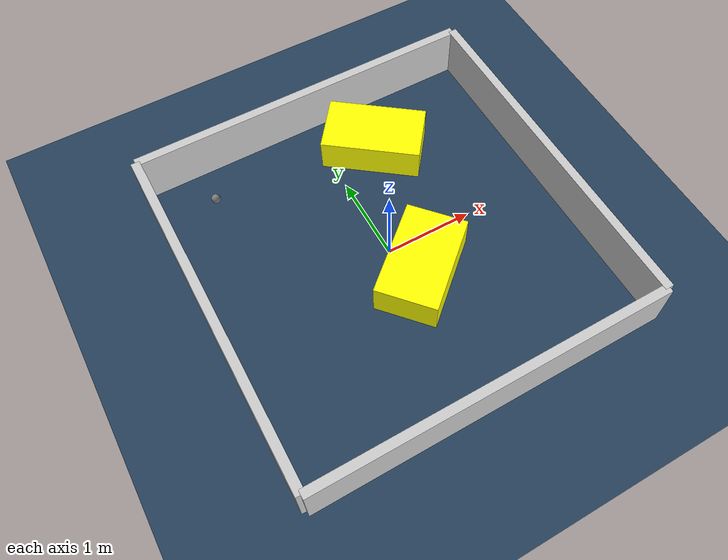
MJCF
<?xml version="1.0" ?>
<mujoco model="generated_environment">
  <option timestep="0.01" integrator="RK4" cone="elliptic"/>
  <default>
    <geom density="1"/>
  </default>
  <asset>
    <texture builtin="gradient" height="3072" rgb1="0.3 0.5 0.7" rgb2="0 0 0" type="skybox" width="512"/>
    <texture builtin="checker" height="300" mark="edge" markrgb="0.8 0.8 0.8" name="groundplane" rgb1="0.2 0.3 0.4" rgb2="0.1 0.2 0.3" type="2d" width="300"/>
    <material name="groundplane" reflectance="0.2" texrepeat="5 5" texture="groundplane" texuniform="true"/>
    <material name="robot" rgba="0.0 1.0 0.0 1"/>
  </asset>
  <worldbody>
    <light dir="0 0 -1" directional="true" pos="0 0 1.5"/>
    <geom condim="4" friction="1.0 0.005 0.001" material="groundplane" name="floor" size="0 0 0.05" type="plane"/>
    <body name="walls">
      <geom name="wall_1" condim="4" pos="-2.0 0.0 0.3" rgba="0.800000011920929 0.800000011920929 0.800000011920929 1.0" size="0.05 2.0 0.3" type="box"/>
      <geom name="wall_2" condim="4" pos="2.0 0.0 0.3" rgba="0.800000011920929 0.800000011920929 0.800000011920929 1.0" size="0.05 2.0 0.3" type="box"/>
      <geom name="wall_3" condim="4" pos="0.0 -2.0 0.3" rgba="0.800000011920929 0.800000011920929 0.800000011920929 1.0" size="2.0 0.05 0.3" type="box"/>
      <geom name="wall_4" condim="4" pos="0.0 2.0 0.3" rgba="0.800000011920929 0.800000011920929 0.800000011920929 1.0" size="2.0 0.05 0.3" type="box"/>
    </body>
    <body name="robot">
      <joint name="joint_x" type="slide" pos="0 0 0" axis="1 0 0"/>
      <joint name="joint_y" type="slide" pos="0 0 0" axis="0 1 0"/>
      <geom name="robot" type="sphere" pos="-1.382112549306863 1.432392535112283 0.2" size="0.05" mass="5." friction="1.0 0.005 0.0001" condim="4"/>
      <site name="sensor_ball"/>
    </body>
    <body name="obstacle_1_movable">
      <geom name="obstacle_1_movable" condim="4" pos="0.1547471898618289 -0.4010861834576924 0.2" euler="0 0 131.54673709946405" friction="1.0 0.005 0.001" rgba="1 1 0 1" size="0.3400726075111799 0.5473582053009333 0.2" type="box" mass="0.1"/>
      <joint type="free"/>
    </body>
    <body name="obstacle_2_movable">
      <geom name="obstacle_2_movable" condim="4" pos="0.5375313975424991 1.3042610960409737 0.2" euler="0 0 142.59962158738014" friction="1.0 0.005 0.001" rgba="1 1 0 1" size="0.5572084906165979 0.3226111948987077 0.2" type="box" mass="0.1"/>
      <joint type="free"/>
    </body>
  </worldbody>
  <actuator>
    <motor name="actuator_x" joint="joint_x" gear="1" ctrlrange="-1 1"/>
    <motor name="actuator_y" joint="joint_y" gear="1" ctrlrange="-1 1"/>
  </actuator>
</mujoco>
